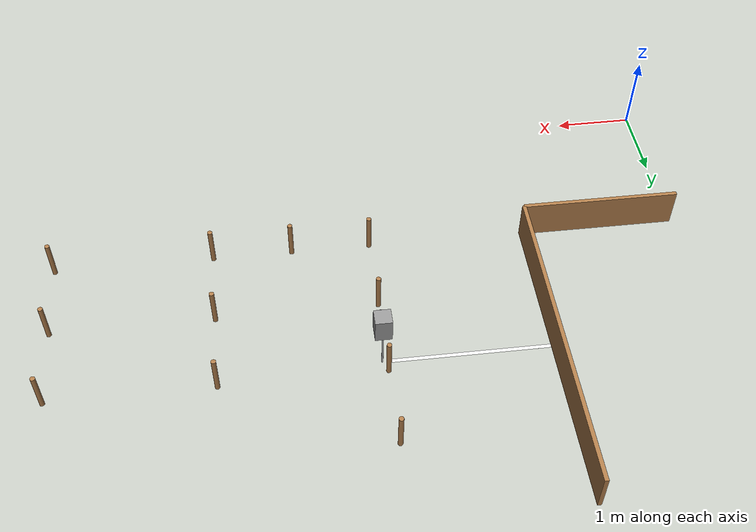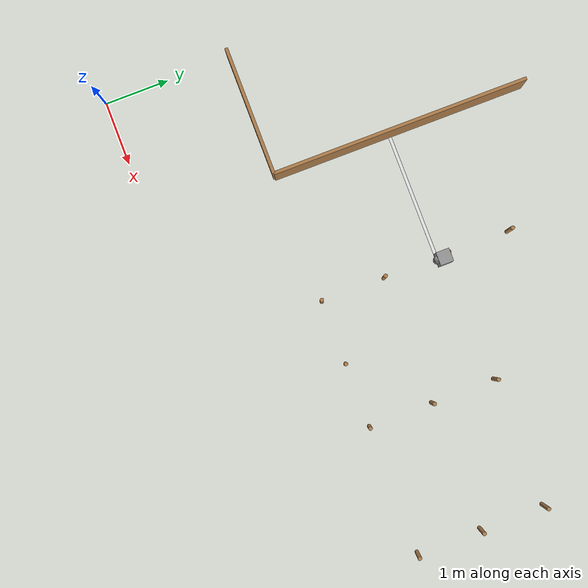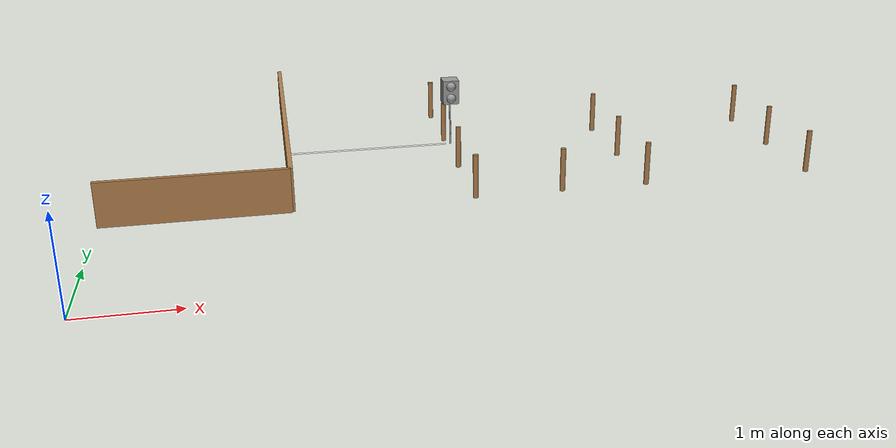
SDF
<sdf version="1.6">
 <world name="default">
  <model name="cylinder_30">
   <pose>8.0 2.0 0.25 0 0 0</pose>
   <link name="link">
    <inertial>
     <mass>1</mass>
     <inertia><ixx>0</ixx><ixy>0</ixy><ixz>0</ixz><iyy>0</iyy><iyz>0</iyz><izz>0</izz></inertia>
    </inertial>
    <collision name="collision">
     <geometry><cylinder><radius>0.03</radius><length>0.5</length></cylinder></geometry>
    </collision>
    <visual name="visual">
     <geometry><cylinder><radius>0.03</radius><length>0.5</length></cylinder></geometry>
     <material>
      <script><name>Gazebo/WoodFloor</name><uri>file://media/materials/scripts/gazebo.material</uri></script>
     </material>
    </visual>
   </link>
   <static>1</static>
  </model>
  <model name="cylinder_28">
   <pose>8.0 3.0 0.25 0 0 0</pose>
   <link name="link">
    <inertial>
     <mass>1</mass>
     <inertia><ixx>0</ixx><ixy>0</ixy><ixz>0</ixz><iyy>0</iyy><iyz>0</iyz><izz>0</izz></inertia>
    </inertial>
    <collision name="collision">
     <geometry><cylinder><radius>0.03</radius><length>0.5</length></cylinder></geometry>
    </collision>
    <visual name="visual">
     <geometry><cylinder><radius>0.03</radius><length>0.5</length></cylinder></geometry>
     <material>
      <script><name>Gazebo/WoodFloor</name><uri>file://media/materials/scripts/gazebo.material</uri></script>
     </material>
    </visual>
   </link>
   <static>1</static>
  </model>
  <model name="cylinder_25">
   <pose>8.0 4.0 0.25 0 0 0</pose>
   <link name="link">
    <inertial>
     <mass>1</mass>
     <inertia><ixx>0</ixx><ixy>0</ixy><ixz>0</ixz><iyy>0</iyy><iyz>0</iyz><izz>0</izz></inertia>
    </inertial>
    <collision name="collision">
     <geometry><cylinder><radius>0.03</radius><length>0.5</length></cylinder></geometry>
    </collision>
    <visual name="visual">
     <geometry><cylinder><radius>0.03</radius><length>0.5</length></cylinder></geometry>
     <material>
      <script><name>Gazebo/WoodFloor</name><uri>file://media/materials/scripts/gazebo.material</uri></script>
     </material>
    </visual>
   </link>
   <static>1</static>
  </model>
  <model name="cylinder_22">
   <pose>8.0 4.0 0.25 0 0 0</pose>
   <link name="link">
    <inertial>
     <mass>1</mass>
     <inertia><ixx>0</ixx><ixy>0</ixy><ixz>0</ixz><iyy>0</iyy><iyz>0</iyz><izz>0</izz></inertia>
    </inertial>
    <collision name="collision">
     <geometry><cylinder><radius>0.03</radius><length>0.5</length></cylinder></geometry>
    </collision>
    <visual name="visual">
     <geometry><cylinder><radius>0.03</radius><length>0.5</length></cylinder></geometry>
     <material>
      <script><name>Gazebo/WoodFloor</name><uri>file://media/materials/scripts/gazebo.material</uri></script>
     </material>
    </visual>
   </link>
   <static>1</static>
  </model>
  <model name="cylinder_16">
   <pose>6.0 2.0 0.25 0 0 0</pose>
   <link name="link">
    <inertial>
     <mass>1</mass>
     <inertia><ixx>0</ixx><ixy>0</ixy><ixz>0</ixz><iyy>0</iyy><iyz>0</iyz><izz>0</izz></inertia>
    </inertial>
    <collision name="collision">
     <geometry><cylinder><radius>0.03</radius><length>0.5</length></cylinder></geometry>
    </collision>
    <visual name="visual">
     <geometry><cylinder><radius>0.03</radius><length>0.5</length></cylinder></geometry>
     <material>
      <script><name>Gazebo/WoodFloor</name><uri>file://media/materials/scripts/gazebo.material</uri></script>
     </material>
    </visual>
   </link>
   <static>1</static>
  </model>
  <model name="cylinder_15">
   <pose>5.0 2.0 0.25 0 0 0</pose>
   <link name="link">
    <inertial>
     <mass>1</mass>
     <inertia><ixx>0</ixx><ixy>0</ixy><ixz>0</ixz><iyy>0</iyy><iyz>0</iyz><izz>0</izz></inertia>
    </inertial>
    <collision name="collision">
     <geometry><cylinder><radius>0.03</radius><length>0.5</length></cylinder></geometry>
    </collision>
    <visual name="visual">
     <geometry><cylinder><radius>0.03</radius><length>0.5</length></cylinder></geometry>
     <material>
      <script><name>Gazebo/WoodFloor</name><uri>file://media/materials/scripts/gazebo.material</uri></script>
     </material>
    </visual>
   </link>
   <static>1</static>
  </model>
  <model name="cylinder_14">
   <pose>4.0 2.0 0.25 0 0 0</pose>
   <link name="link">
    <inertial>
     <mass>1</mass>
     <inertia><ixx>0</ixx><ixy>0</ixy><ixz>0</ixz><iyy>0</iyy><iyz>0</iyz><izz>0</izz></inertia>
    </inertial>
    <collision name="collision">
     <geometry><cylinder><radius>0.03</radius><length>0.5</length></cylinder></geometry>
    </collision>
    <visual name="visual">
     <geometry><cylinder><radius>0.03</radius><length>0.5</length></cylinder></geometry>
     <material>
      <script><name>Gazebo/WoodFloor</name><uri>file://media/materials/scripts/gazebo.material</uri></script>
     </material>
    </visual>
   </link>
   <static>1</static>
  </model>
  <model name="cylinder_13">
   <pose>6.0 3.0 0.25 0 0 0</pose>
   <link name="link">
    <inertial>
     <mass>1</mass>
     <inertia><ixx>0</ixx><ixy>0</ixy><ixz>0</ixz><iyy>0</iyy><iyz>0</iyz><izz>0</izz></inertia>
    </inertial>
    <collision name="collision">
     <geometry><cylinder><radius>0.03</radius><length>0.5</length></cylinder></geometry>
    </collision>
    <visual name="visual">
     <geometry><cylinder><radius>0.03</radius><length>0.5</length></cylinder></geometry>
     <material>
      <script><name>Gazebo/WoodFloor</name><uri>file://media/materials/scripts/gazebo.material</uri></script>
     </material>
    </visual>
   </link>
   <static>1</static>
  </model>
  <model name="cylinder_12">
   <pose>4.0 3.0 0.25 0 0 0</pose>
   <link name="link">
    <inertial>
     <mass>1</mass>
     <inertia><ixx>0</ixx><ixy>0</ixy><ixz>0</ixz><iyy>0</iyy><iyz>0</iyz><izz>0</izz></inertia>
    </inertial>
    <collision name="collision">
     <geometry><cylinder><radius>0.03</radius><length>0.5</length></cylinder></geometry>
    </collision>
    <visual name="visual">
     <geometry><cylinder><radius>0.03</radius><length>0.5</length></cylinder></geometry>
     <material>
      <script><name>Gazebo/WoodFloor</name><uri>file://media/materials/scripts/gazebo.material</uri></script>
     </material>
    </visual>
   </link>
   <static>1</static>
  </model>
  <model name="cylinder_11">
   <pose>6.0 4.0 0.25 0 0 0</pose>
   <link name="link">
    <inertial>
     <mass>1</mass>
     <inertia><ixx>0</ixx><ixy>0</ixy><ixz>0</ixz><iyy>0</iyy><iyz>0</iyz><izz>0</izz></inertia>
    </inertial>
    <collision name="collision">
     <geometry><cylinder><radius>0.03</radius><length>0.5</length></cylinder></geometry>
    </collision>
    <visual name="visual">
     <geometry><cylinder><radius>0.03</radius><length>0.5</length></cylinder></geometry>
     <material>
      <script><name>Gazebo/WoodFloor</name><uri>file://media/materials/scripts/gazebo.material</uri></script>
     </material>
    </visual>
   </link>
   <static>1</static>
  </model>
  <model name="cylinder_9">
   <pose>4.0 4.0 0.25 0 0 0</pose>
   <link name="link">
    <inertial>
     <mass>1</mass>
     <inertia><ixx>0</ixx><ixy>0</ixy><ixz>0</ixz><iyy>0</iyy><iyz>0</iyz><izz>0</izz></inertia>
    </inertial>
    <collision name="collision">
     <geometry><cylinder><radius>0.03</radius><length>0.5</length></cylinder></geometry>
    </collision>
    <visual name="visual">
     <geometry><cylinder><radius>0.03</radius><length>0.5</length></cylinder></geometry>
     <material>
      <script><name>Gazebo/WoodFloor</name><uri>file://media/materials/scripts/gazebo.material</uri></script>
     </material>
    </visual>
   </link>
   <static>1</static>
  </model>
  <model name="cylinder_8">
   <pose>6.0 4.0 0.25 0 0 0</pose>
   <link name="link">
    <inertial>
     <mass>1</mass>
     <inertia><ixx>0</ixx><ixy>0</ixy><ixz>0</ixz><iyy>0</iyy><iyz>0</iyz><izz>0</izz></inertia>
    </inertial>
    <collision name="collision">
     <geometry><cylinder><radius>0.03</radius><length>0.5</length></cylinder></geometry>
    </collision>
    <visual name="visual">
     <geometry><cylinder><radius>0.03</radius><length>0.5</length></cylinder></geometry>
     <material>
      <script><name>Gazebo/WoodFloor</name><uri>file://media/materials/scripts/gazebo.material</uri></script>
     </material>
    </visual>
   </link>
   <static>1</static>
  </model>
  <model name="cylinder_6">
   <pose>4.0 4.0 0.25 0 0 0</pose>
   <link name="link">
    <inertial>
     <mass>1</mass>
     <inertia><ixx>0</ixx><ixy>0</ixy><ixz>0</ixz><iyy>0</iyy><iyz>0</iyz><izz>0</izz></inertia>
    </inertial>
    <collision name="collision">
     <geometry><cylinder><radius>0.03</radius><length>0.5</length></cylinder></geometry>
    </collision>
    <visual name="visual">
     <geometry><cylinder><radius>0.03</radius><length>0.5</length></cylinder></geometry>
     <material>
      <script><name>Gazebo/WoodFloor</name><uri>file://media/materials/scripts/gazebo.material</uri></script>
     </material>
    </visual>
   </link>
   <static>1</static>
  </model>
  <model name="cylinder_4">
   <pose>4.0 5.0 0.25 0 0 0</pose>
   <link name="link">
    <inertial>
     <mass>1</mass>
     <inertia><ixx>0</ixx><ixy>0</ixy><ixz>0</ixz><iyy>0</iyy><iyz>0</iyz><izz>0</izz></inertia>
    </inertial>
    <collision name="collision">
     <geometry><cylinder><radius>0.03</radius><length>0.5</length></cylinder></geometry>
    </collision>
    <visual name="visual">
     <geometry><cylinder><radius>0.03</radius><length>0.5</length></cylinder></geometry>
     <material>
      <script><name>Gazebo/WoodFloor</name><uri>file://media/materials/scripts/gazebo.material</uri></script>
     </material>
    </visual>
   </link>
   <static>1</static>
  </model>
  <model name="box_31">
   <pose>1.0 2.0 0.25 0 0 -0.0</pose>
   <link name="link">
    <inertial>
     <mass>1</mass>
     <inertia><ixx>0</ixx><ixy>0</ixy><ixz>0</ixz><iyy>0</iyy><iyz>0</iyz><izz>0</izz></inertia>
    </inertial>
    <collision name="collision"><geometry><box><size>2.0 0.05 0.5</size></box></geometry></collision>
    <visual name="visual">
     <geometry><box><size>2.0 0.05 0.5</size></box></geometry>
     <material>
      <script><name>Gazebo/WoodFloor</name><uri>file://media/materials/scripts/gazebo.material</uri></script>
     </material>
    </visual>
   </link>
   <static>1</static>
  </model>
  <model name="box_30">
   <pose>2.0 4.0 0.25 0 0 1.5707963267948966</pose>
   <link name="link">
    <inertial>
     <mass>1</mass>
     <inertia><ixx>0</ixx><ixy>0</ixy><ixz>0</ixz><iyy>0</iyy><iyz>0</iyz><izz>0</izz></inertia>
    </inertial>
    <collision name="collision"><geometry><box><size>4.0 0.05 0.5</size></box></geometry></collision>
    <visual name="visual">
     <geometry><box><size>4.0 0.05 0.5</size></box></geometry>
     <material>
      <script><name>Gazebo/WoodFloor</name><uri>file://media/materials/scripts/gazebo.material</uri></script>
     </material>
    </visual>
   </link>
   <static>1</static>
  </model>
  <model name="tl_line_2">
   <static>1</static>
   <pose>2.9999999999999996 3.8599999999999994 0.001 0 0 6.283185307179586</pose>
   <link name="link">
    <collision name="collision">
     <geometry><plane><normal>0 0 1</normal><size>2.0 0.05</size></plane></geometry>
     <surface><friction><ode><mu>100</mu><mu2>50</mu2></ode></friction></surface>
    </collision>
    <visual name="visual">
     <geometry><plane><normal>0 0 1</normal><size>2.0 0.05</size></plane></geometry>
     <material>
      <script><name>Gazebo/White</name><uri>file://media/materials/scripts/gazebo.material</uri></script>
     </material>
    </visual>
   </link>
  </model>
  <include>
   <uri>model://traffic-light</uri>
   <name>traffic_light_1</name>
   <pose>4.06 3.8599999999999994 0 0 0 6.283185307179586</pose>
  </include>
 </world>
</sdf>
